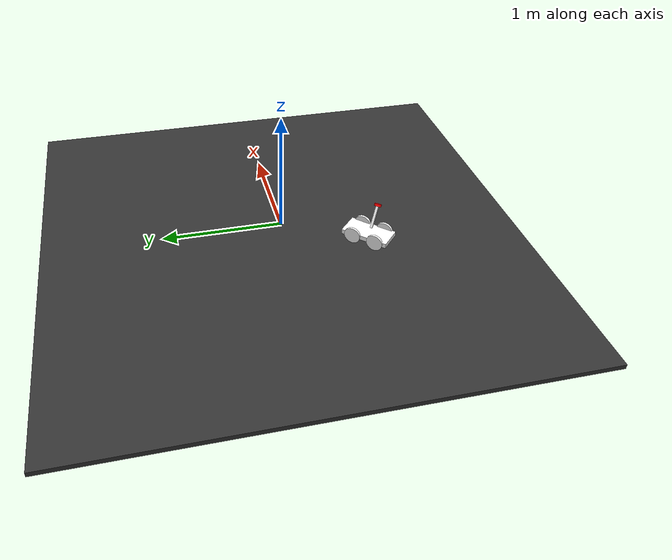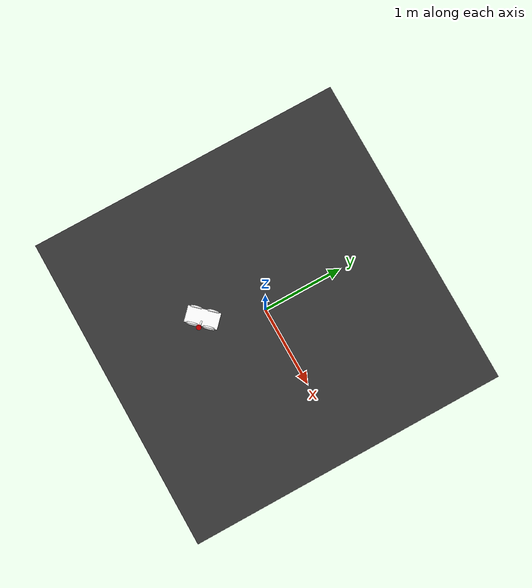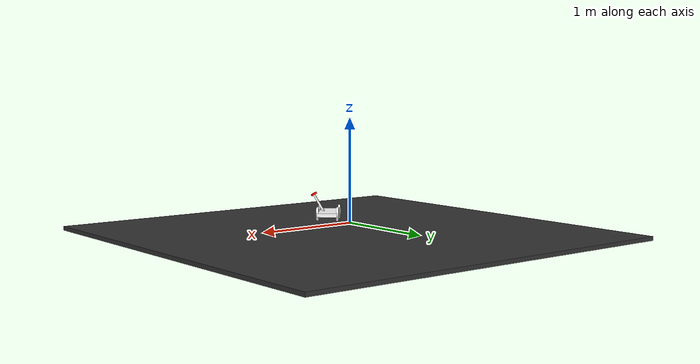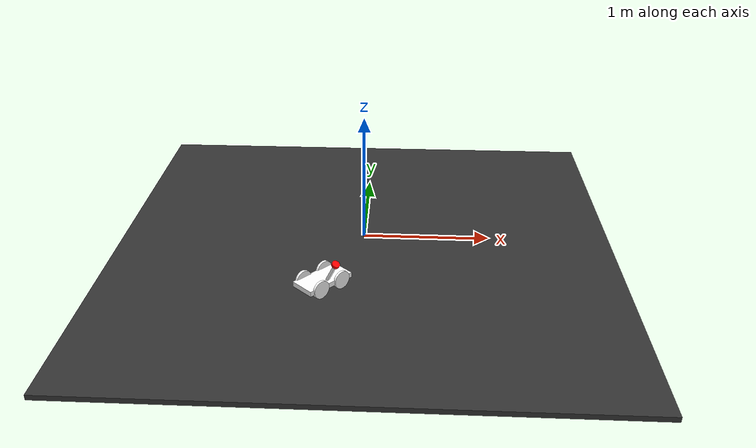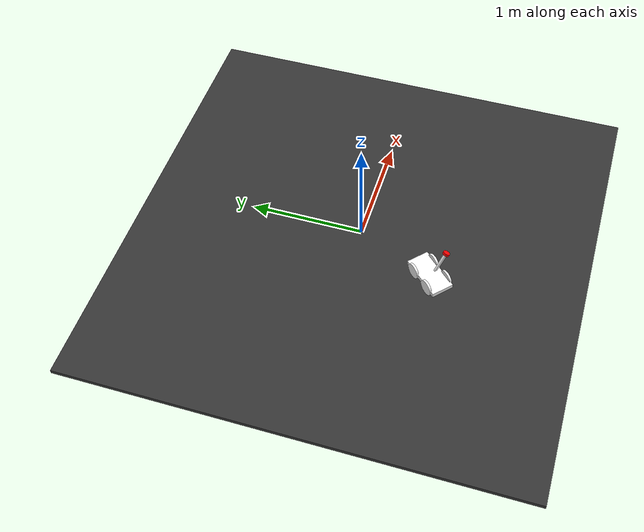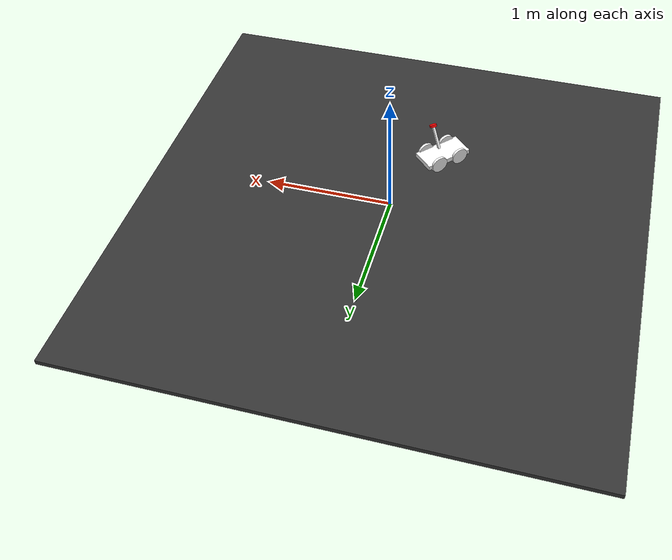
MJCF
<?xml version="1.0" ?>
<mujoco>
    <worldbody>

        <body name="floor" pos="0 0 -0.1">
            <geom size="2.0 2.0 0.02" rgba="0.2 0.2 0.2 1" type="box"/>
        </body>
        <body name="x_arrow" pos="0.5 0 0">
            <geom size="0.5 0.01 0.01" rgba="1 0 0 0.5" type="box"/>
        </body>
        <body name="y_arrow" pos="0 0.5 0">
            <geom size="0.01 0.5 0.01" rgba="0 1 0 0.5" type="box"/>
        </body>
        <body name="z_arrow" pos="0 0 0.5">
            <geom size="0.01 0.01 0.5" rgba="0 0 1 0.5" type="box"/>
        </body>

        <body name="car" pos="-0.274 -0.688 0.0" axisangle="0 0 1 46.552">
            <geom size="0.2 0.1 0.02" rgba="1 1 1 0.9" type="box"/>
        </body>
        <body name="wheel_1" pos="-0.278 -0.546 0.0" axisangle="0.854 0.368 0.368 98.984">
            <geom size="0.07 0.01" rgba="1 1 1 0.9" type="cylinder"/>
        </body>
        <body name="wheel_2" pos="-0.415 -0.692 0.0" axisangle="0.854 0.368 0.368 98.984">
            <geom size="0.07 0.01" rgba="1 1 1 0.9" type="cylinder"/>
        </body>
        <body name="wheel_3" pos="-0.270 -0.829 0.0" axisangle="0.854 0.368 0.368 98.984">
            <geom size="0.07 0.01" rgba="1 1 1 0.9" type="cylinder"/>
        </body>
        <body name="wheel_4" pos="-0.133 -0.684 0.0" axisangle="0.854 0.368 0.368 98.984">
            <geom size="0.07 0.01" rgba="1 1 1 0.9" type="cylinder"/>
        </body>
        <body name="radar_1" pos="-0.201 -0.756 0.100" axisangle="0.516 0.222 0.828 54.925">
        <geom size="0.01 0.01 0.1" rgba="1 1 1 1" type="box"/>
        </body>
        <body name="radar_2" pos="-0.165 -0.791 0.190" axisangle="0.516 0.222 0.828 54.925">
            <geom size="0.03 0.01" rgba="1 0 0 1" type="cylinder"/>
        </body>

    </worldbody>

    <visual>
        <global offwidth="1280" offheight="1280"/>
    </visual>
</mujoco>
